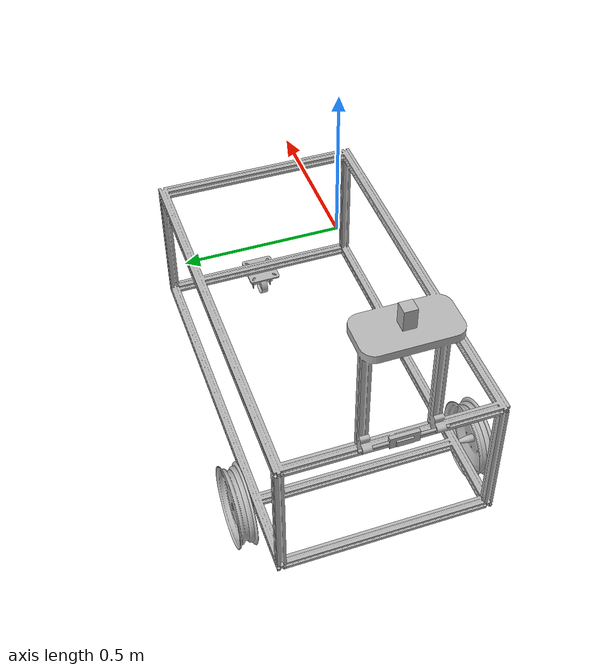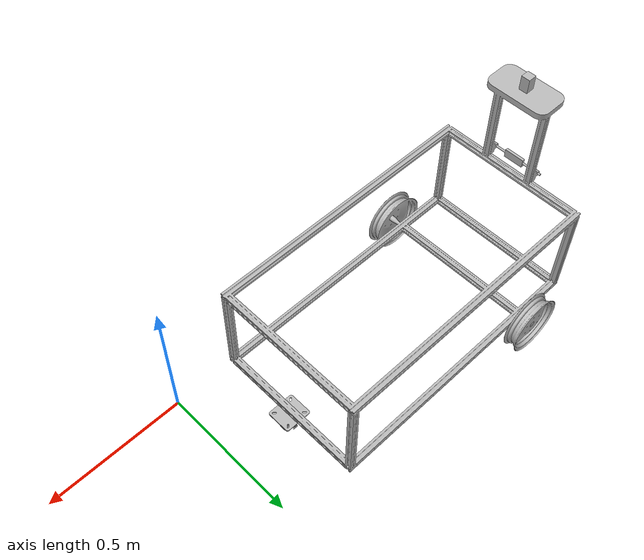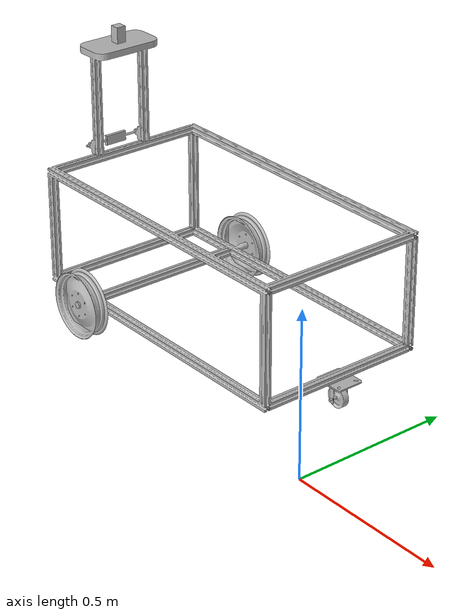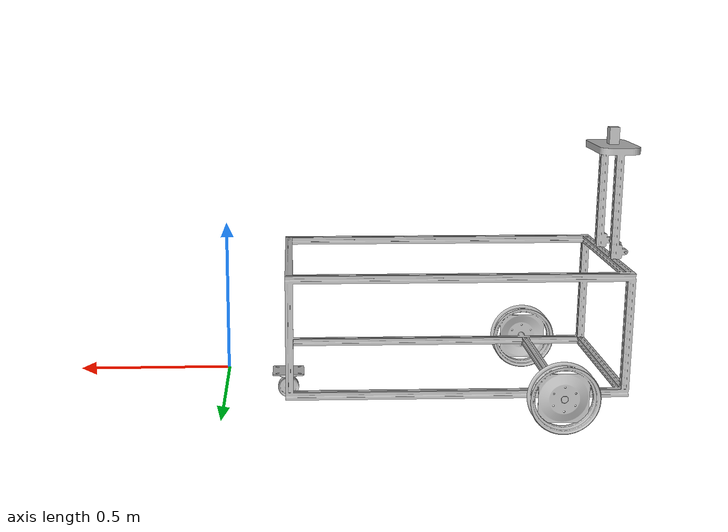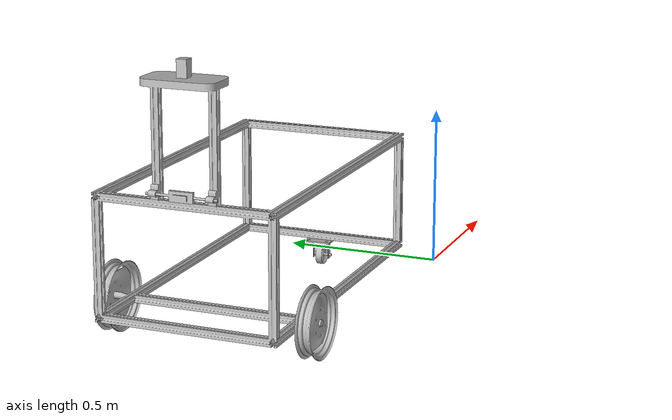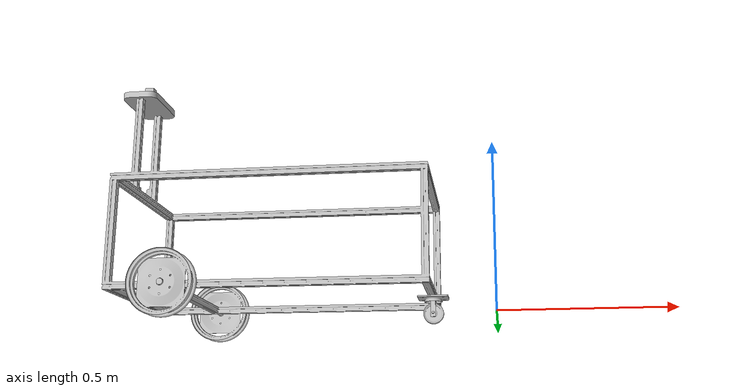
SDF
<?xml version='1.0' encoding='utf-8'?>
<sdf version="1.7">
    <model name="base_link">
        <link name="base_link">
            <pose>-0.19422215911065605 0.06587307593033147 0.44148718017037836 2.5660543780662435e-15 5.551115123125345e-17 -8.881784197001237e-16</pose>
            <inertial>
                <mass>20.125748492371947</mass>
                <pose>-0.6490520453576459 0.24726853802411974 -0.0479580238563936 0.0 0.0 0.0</pose>
                <inertia>
                    <ixx>2.142585604468082</ixx>
                    <iyy>4.383579065343321</iyy>
                    <izz>3.865672067630304</izz>
                    <ixy>-0.018779794988842063</ixy>
                    <iyz>0.018925346432930774</iyz>
                    <ixz>0.8230774032066721</ixz>
                </inertia>
            </inertial>
            <visual name="base_link_visual">
                <geometry>
                    <mesh>
                        <uri>model://igvc_vehicle/meshes/base_link.stl</uri>
                        <scale>0.001 0.001 0.001</scale>
                    </mesh>
                </geometry>
            </visual>
            <collision name="base_link_collision">
                <geometry>
                    <mesh>
                        <uri>model://igvc_vehicle/meshes/base_link.stl</uri>
                        <scale>0.001 0.001 0.001</scale>
                    </mesh>
                </geometry>
            </collision>
        </link>
        <link name="wheel">
            <pose>-0.1942221591106562 0.07087307593033282 0.44148718017037825 -9.8665930073425e-16 5.551115123125345e-17 -8.881784197001237e-16</pose>
            <inertial>
                <mass>0.8423087818519673</mass>
                <pose>-0.8009477004101847 -0.06174115967205306 -0.3361045526313808 0.0 0.0 0.0</pose>
                <inertia>
                    <ixx>0.0029994696816999693</ixx>
                    <iyy>0.005771364339872107</iyy>
                    <izz>0.002999469682328817</izz>
                    <ixy>-3.713957088600412e-15</ixy>
                    <iyz>1.0918154346371357e-15</iyz>
                    <ixz>-7.401257338402143e-16</ixz>
                </inertia>
            </inertial>
            <visual name="wheel_visual">
                <geometry>
                    <mesh>
                        <uri>model://igvc_vehicle/meshes/wheel.stl</uri>
                        <scale>0.001 0.001 0.001</scale>
                    </mesh>
                </geometry>
            </visual>
            <collision name="wheel_collision">
                <geometry>
                    <mesh>
                        <uri>model://igvc_vehicle/meshes/wheel.stl</uri>
                        <scale>0.001 0.001 0.001</scale>
                    </mesh>
                </geometry>
            </collision>
        </link>
        <link name="wheel_2">
            <pose>-0.1942221591106567 0.5658737697398456 0.44148718017037963 -3.141592653589791 5.55111512312551e-17 -1.7763568394002465e-15</pose>
            <inertial>
                <mass>0.8423087818519767</mass>
                <pose>-0.8009477004101855 -0.06174115967205585 0.3361045526313805 0.0 0.0 0.0</pose>
                <inertia>
                    <ixx>0.002999469681699678</ixx>
                    <iyy>0.005771364339871885</iyy>
                    <izz>0.002999469682328595</izz>
                    <ixy>-6.542167721061572e-16</ixy>
                    <iyz>1.0722482131372327e-15</iyz>
                    <ixz>9.621703387652402e-16</ixz>
                </inertia>
            </inertial>
            <visual name="wheel_2_visual">
                <geometry>
                    <mesh>
                        <uri>model://igvc_vehicle/meshes/wheel_2.stl</uri>
                        <scale>0.001 0.001 0.001</scale>
                    </mesh>
                </geometry>
            </visual>
            <collision name="wheel_2_collision">
                <geometry>
                    <mesh>
                        <uri>model://igvc_vehicle/meshes/wheel_2.stl</uri>
                        <scale>0.001 0.001 0.001</scale>
                    </mesh>
                </geometry>
            </collision>
        </link>
        <link name="camera">
            <pose>-2.9103695377900296 -1.8692234690728244 0.6707944750464168 1.5707963267948968 -2.569523840706928e-15 1.570796326794895</pose>
            <inertial>
                <mass>0.23069433704075173</mass>
                <pose>2.1740944180772237 -0.18611148647242015 1.695381762654436 0.0 0.0 0.0</pose>
                <inertia>
                    <ixx>1.57271868148071e-05</ixx>
                    <iyy>0.00029773022449680977</iyy>
                    <izz>0.0003079738381624507</izz>
                    <ixy>3.3005650026264214e-08</ixy>
                    <iyz>-2.4524010663935657e-07</iyz>
                    <ixz>1.5995689475798074e-07</ixz>
                </inertia>
            </inertial>
            <visual name="camera_visual">
                <geometry>
                    <mesh>
                        <uri>model://igvc_vehicle/meshes/camera.stl</uri>
                        <scale>0.001 0.001 0.001</scale>
                    </mesh>
                </geometry>
            </visual>
            <collision name="camera_collision">
                <geometry>
                    <mesh>
                        <uri>model://igvc_vehicle/meshes/camera.stl</uri>
                        <scale>0.001 0.001 0.001</scale>
                    </mesh>
                </geometry>
            </collision>
        </link>
        <link name="depth-camera">
            <pose>-1.219222159110657 0.34087307593032307 0.7986976465727516 1.5707963267948992 5.551115123125345e-17 -8.881784197001237e-16</pose>
            <inertial>
                <mass>0.35325</mass>
                <pose>0.03499999999998361 0.025000000000006524 0.03499999999998601 0.0 0.0 0.0</pose>
                <inertia>
                    <ixx>0.00010008749999995881</ixx>
                    <iyy>5.298749999993532e-05</iyy>
                    <izz>0.00010008749999990281</izz>
                    <ixy>-5.566213072840188e-17</ixy>
                    <iyz>1.3833198251473266e-17</iyz>
                    <ixz>2.333508386520535e-19</ixz>
                </inertia>
            </inertial>
            <visual name="depth-camera_visual">
                <geometry>
                    <mesh>
                        <uri>model://igvc_vehicle/meshes/depth-camera.stl</uri>
                        <scale>0.001 0.001 0.001</scale>
                    </mesh>
                </geometry>
            </visual>
            <collision name="depth-camera_collision">
                <geometry>
                    <mesh>
                        <uri>model://igvc_vehicle/meshes/depth-camera.stl</uri>
                        <scale>0.001 0.001 0.001</scale>
                    </mesh>
                </geometry>
            </collision>
        </link>
        <link name="caster_wheel_1">
            <pose>-0.1380007687941009 0.07635336072253983 0.17922630628019875 1.167434911886212e-16 -1.42032332300775e-15 1.570796326794898</pose>
            <inertial>
                <mass>0.020190100946861016</mass>
                <pose>0.2349126173509042 0.06327132575045886 -0.13812561324665415 0.0 0.0 0.0</pose>
                <inertia>
                    <ixx>1.3842547153745727e-07</ixx>
                    <iyy>6.066848728730958e-06</iyy>
                    <izz>6.06684873762744e-06</izz>
                    <ixy>-5.48527779091419e-17</ixy>
                    <iyz>2.313250388176255e-18</iyz>
                    <ixz>2.8817886743409573e-18</ixz>
                </inertia>
            </inertial>
            <visual name="caster_wheel_1_visual">
                <geometry>
                    <mesh>
                        <uri>model://igvc_vehicle/meshes/caster_wheel_1.stl</uri>
                        <scale>0.001 0.001 0.001</scale>
                    </mesh>
                </geometry>
            </visual>
            <collision name="caster_wheel_1_collision">
                <geometry>
                    <mesh>
                        <uri>model://igvc_vehicle/meshes/caster_wheel_1.stl</uri>
                        <scale>0.001 0.001 0.001</scale>
                    </mesh>
                </geometry>
            </collision>
        </link>
        <link name="caster_wheel_2">
            <pose>-0.4260946264434866 0.29831808847279245 0.15274472377757808 9.828924590765956e-13 5.55111512314205e-17 -1.0578724688647875e-15</pose>
            <inertial>
                <mass>0.33331056680677573</mass>
                <pose>0.22466781423758952 0.0175553343622468 -0.06151877573556781 0.0 0.0 0.0</pose>
                <inertia>
                    <ixx>0.00019502081882793012</ixx>
                    <iyy>0.00023452073507137036</iyy>
                    <izz>0.0004246120757433867</izz>
                    <ixy>-3.5190940260527904e-17</ixy>
                    <iyz>2.4100345005914794e-16</iyz>
                    <ixz>-5.3221089441112546e-17</ixz>
                </inertia>
            </inertial>
            <visual name="caster_wheel_2_visual">
                <geometry>
                    <mesh>
                        <uri>model://igvc_vehicle/meshes/caster_wheel_2.stl</uri>
                        <scale>0.001 0.001 0.001</scale>
                    </mesh>
                </geometry>
            </visual>
            <collision name="caster_wheel_2_collision">
                <geometry>
                    <mesh>
                        <uri>model://igvc_vehicle/meshes/caster_wheel_2.stl</uri>
                        <scale>0.001 0.001 0.001</scale>
                    </mesh>
                </geometry>
            </collision>
        </link>
        <link name="caster_wheel_3">
            <pose>-0.13800076879410086 0.09006552563784245 0.1792263062801988 1.149966174597004e-16 -1.024845247154507e-15 1.570796326794898</pose>
            <inertial>
                <mass>0.2322949057076431</mass>
                <pose>0.22430488989325262 0.06327132575065525 -0.13812561324665415 0.0 0.0 0.0</pose>
                <inertia>
                    <ixx>0.0001440960475086535</ixx>
                    <iyy>7.51329432800826e-05</iyy>
                    <izz>7.513294327917647e-05</izz>
                    <ixy>4.361621114818038e-17</ixy>
                    <iyz>2.787087447639863e-17</iyz>
                    <ixz>3.703039687489096e-17</ixz>
                </inertia>
            </inertial>
            <visual name="caster_wheel_3_visual">
                <geometry>
                    <mesh>
                        <uri>model://igvc_vehicle/meshes/caster_wheel_3.stl</uri>
                        <scale>0.001 0.001 0.001</scale>
                    </mesh>
                </geometry>
            </visual>
            <collision name="caster_wheel_3_collision">
                <geometry>
                    <mesh>
                        <uri>model://igvc_vehicle/meshes/caster_wheel_3.stl</uri>
                        <scale>0.001 0.001 0.001</scale>
                    </mesh>
                </geometry>
            </collision>
        </link>
        <link name="caster_wheel_4">
            <pose>-0.20440887692129323 0.596053931044919 0.06991147997199945 2.238488911888794e-15 5.5511151231253753e-17 -1.0578724688647875e-15</pose>
            <inertial>
                <mass>0.026574060518868955</mass>
                <pose>0.0029747139805706337 -0.28018050294937047 -0.005526884413733393 0.0 0.0 0.0</pose>
                <inertia>
                    <ixx>2.1338433637436368e-05</ixx>
                    <iyy>8.289083156551514e-06</iyy>
                    <izz>1.4103345719381363e-05</izz>
                    <ixy>-9.360094198518332e-18</ixy>
                    <iyz>-9.680163953506889e-15</iyz>
                    <ixz>-4.5481810531632894e-09</ixz>
                </inertia>
            </inertial>
            <visual name="caster_wheel_4_visual">
                <geometry>
                    <mesh>
                        <uri>model://igvc_vehicle/meshes/caster_wheel_4.stl</uri>
                        <scale>0.001 0.001 0.001</scale>
                    </mesh>
                </geometry>
            </visual>
            <collision name="caster_wheel_4_collision">
                <geometry>
                    <mesh>
                        <uri>model://igvc_vehicle/meshes/caster_wheel_4.stl</uri>
                        <scale>0.001 0.001 0.001</scale>
                    </mesh>
                </geometry>
            </collision>
        </link>
        <joint name="base_link_Revolute-4" type="revolute">
            <pose>-0.8009478408893514 -0.0707752302601547 0.33610418017038046 0.0 0.0 0.0</pose>
            <parent>base_link</parent>
            <child>wheel_2</child>
            <axis>
                <xyz expressed_in="__model__">-0.0 1.0 0.0</xyz>
            </axis>
        </joint>
        <joint name="base_link_Revolute-6" type="revolute">
            <pose>-0.8009478408893518 -0.05577507593033175 -0.3361041801703792 0.0 0.0 0.0</pose>
            <parent>base_link</parent>
            <child>wheel</child>
            <axis>
                <xyz expressed_in="__model__">0.0 -1.0 0.0</xyz>
            </axis>
        </joint>
        <joint name="base_link_Rigid-9" type="fixed">
            <pose>0.22466762644348884 0.01755491152714994 -0.05846672377759599 0.0 0.0 0.0</pose>
            <parent>base_link</parent>
            <child>caster_wheel_2</child>
        </joint>
        <joint name="caster_wheel_2_Revolute-12" type="revolute">
            <pose>0.002981876921293556 -0.28018093104492103 0.014712520028000801 0.0 0.0 0.0</pose>
            <parent>caster_wheel_2</parent>
            <child>caster_wheel_4</child>
            <axis>
                <xyz expressed_in="__model__">0.0 0.0 -1.0</xyz>
            </axis>
        </joint>
        <joint name="caster_wheel_4_Revolute-13" type="revolute">
            <pose>0.2130596392774617 0.0632712312058999 -0.1381253062801994 0.0 0.0 0.0</pose>
            <parent>caster_wheel_4</parent>
            <child>caster_wheel_1</child>
            <axis>
                <xyz expressed_in="__model__">-0.0 1.0 0.0</xyz>
            </axis>
        </joint>
        <joint name="caster_wheel_1_Revolute-14" type="revolute">
            <pose>0.22120047436215914 0.0632712312059 -0.13812530628019942 0.0 0.0 0.0</pose>
            <parent>caster_wheel_1</parent>
            <child>caster_wheel_3</child>
            <axis>
                <xyz expressed_in="__model__">0.0 -1.0 -0.0</xyz>
            </axis>
        </joint>
        <joint name="base_link_Rigid-15" type="fixed">
            <pose>0.03500015911065717 3.5342724844750824e-07 0.03500007593032337 0.0 0.0 0.0</pose>
            <parent>base_link</parent>
            <child>depth-camera</child>
        </joint>
        <joint name="base_link_Revolute-16" type="revolute">
            <pose>2.078991469072848 -0.18595347504642912 1.6961475377900466 0.0 0.0 0.0</pose>
            <parent>base_link</parent>
            <child>camera</child>
            <axis>
                <xyz expressed_in="__model__">-0.0 1.0 0.0</xyz>
            </axis>
        </joint>
    </model>
</sdf>
